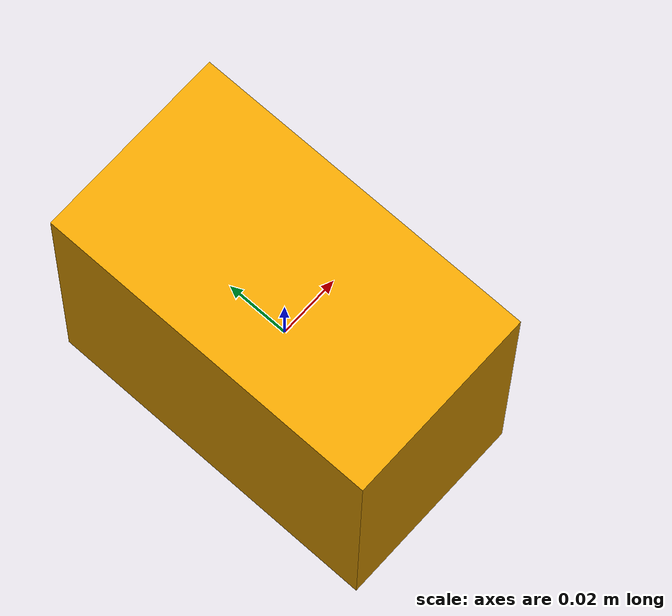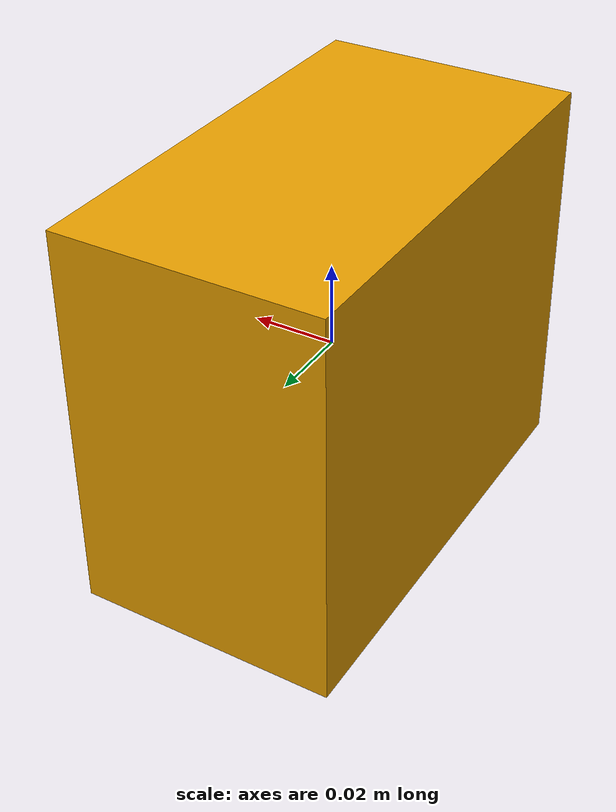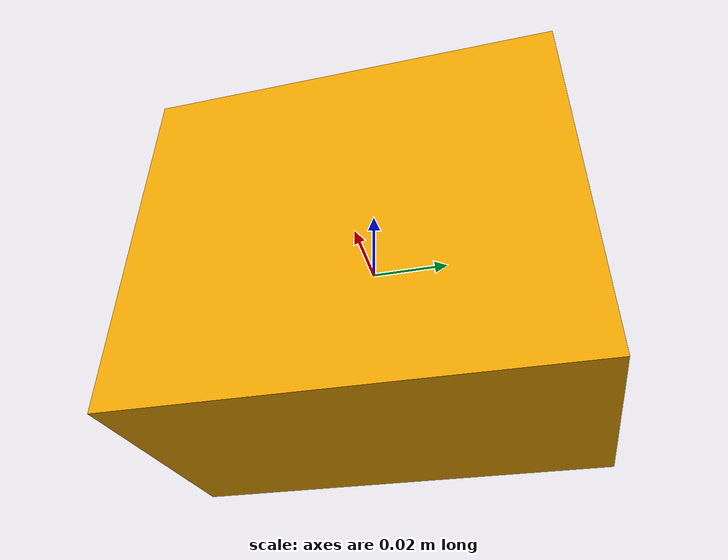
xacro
<?xml version="1.0"?>
<robot xmlns:xacro="http://www.ros.org/wiki/xacro" name="cube">

	<link name="cube">
		<inertial>
			<mass value="0.15"/>
			<!-- cylindrical shell : Izz=m*r^2; Ixx=Iyy=1/12*m*(6*r^2+h^2) -->
			<!-- solid cube : Izz=(m*r^2)/2; Ixx=Iyy=1/12*m*(3*r^2+h^2) -->
			<inertia  ixx="${1/12*(0.15*0.15+0.15*0.15)}" ixy="0.00"  ixz="0.00" iyy="${1/12*(0.15*0.15+0.15*0.15)}" iyz="0.00" izz="${1/12*(0.15*0.15+0.15*0.15)}" />
		</inertial>
		<visual>
			<origin xyz="0 0 0" rpy="0 0 0"/>
			<geometry>
				<box size="0.062 0.110 0.094"/>
			</geometry>
		</visual>
		<collision>
			<origin xyz="0 0 0" rpy="0 0 0"/>
			<geometry>
				<box size="0.062 0.110 0.094"/>
			</geometry>
		</collision>
	</link>

</robot>
